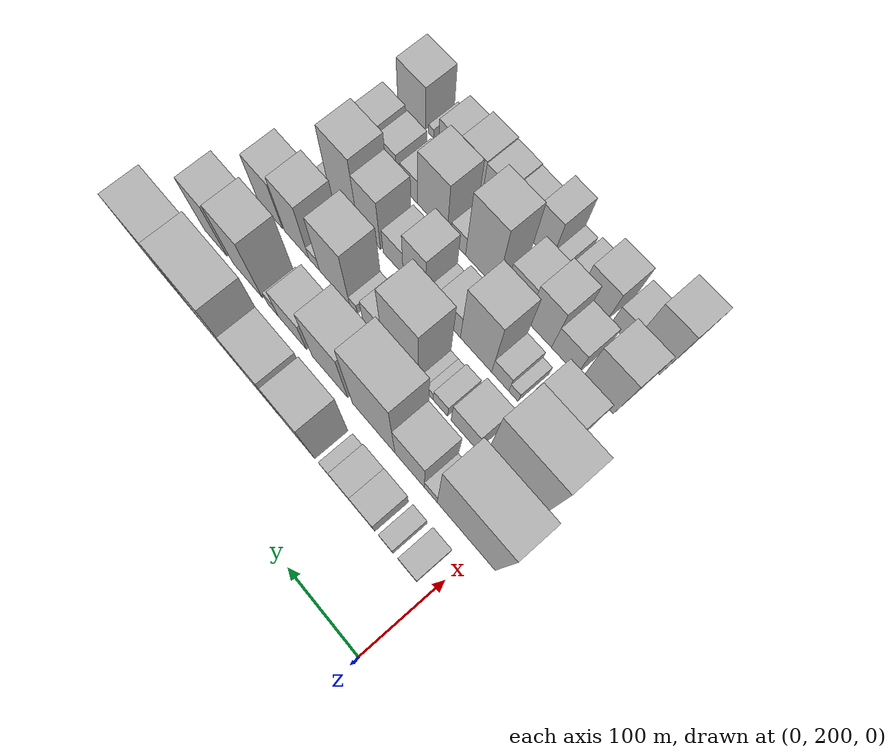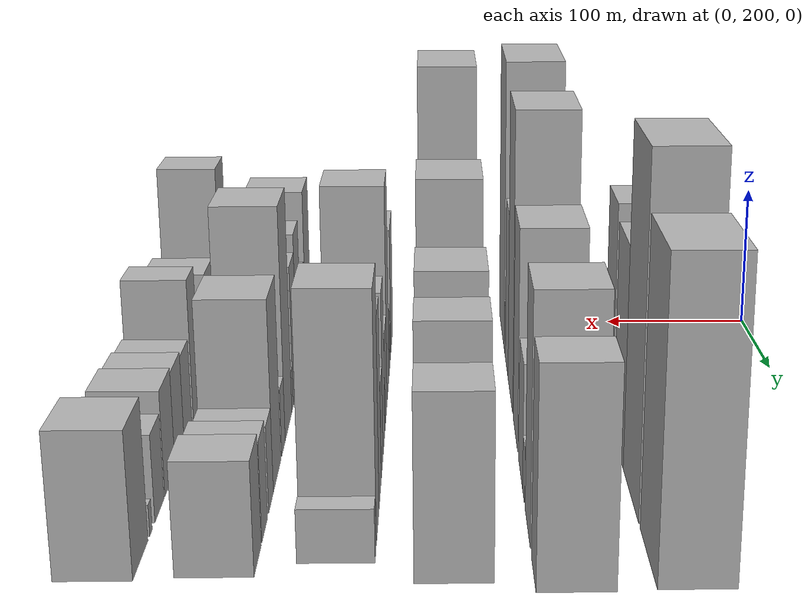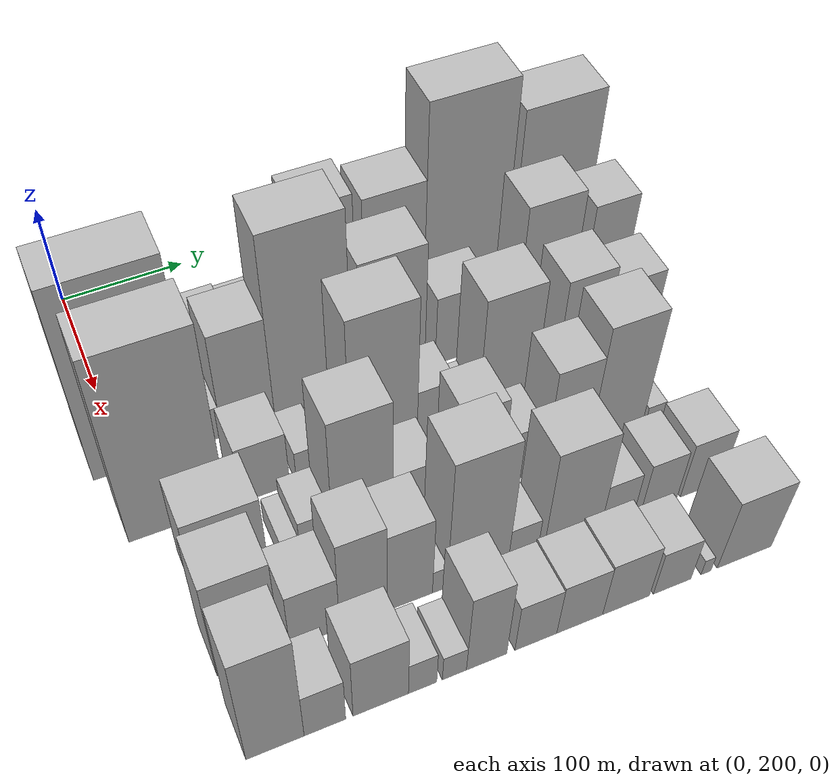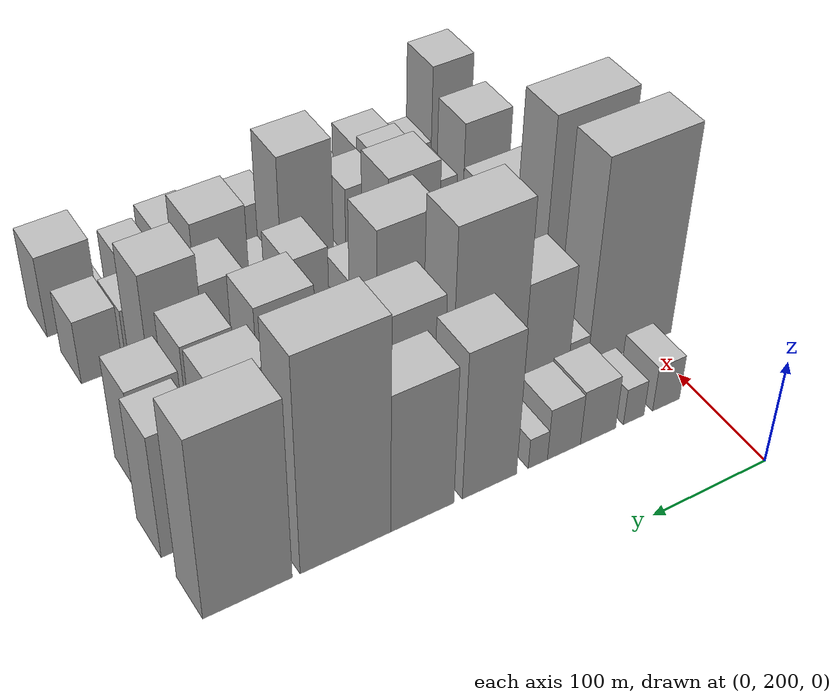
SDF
<sdf version="1.6">
 <world name="default">
  <model name="building_33">
   <static>1</static>
   <pose>100.0000 227.7720 0 0.000000 0.000000 0.000000</pose>
   <link name="link">
    <pose>0 0 22.50 0 0 0</pose>
    <collision name="collision"><geometry><box><size>40.0000 24.8781 45.0000</size></box></geometry></collision>
    <visual name="visual">
     <cast_shadows>0</cast_shadows>
     <geometry><box><size>40.0000 24.8781 45.0000</size></box></geometry>
     <material>
      <script>
       <uri>model://HANNAS_wall/materials/scripts</uri>
       <uri>model://HANNAS_wall/materials/textures</uri>
       <name>vrc/HANNAS_wall</name>
      </script>
     </material>
    </visual>
   </link>
  </model>
  <model name="building_34">
   <static>1</static>
   <pose>100.0000 257.5604 0 0.000000 0.000000 0.000000</pose>
   <link name="link">
    <pose>0 0 18.00 0 0 0</pose>
    <collision name="collision"><geometry><box><size>40.0000 18.6988 36.0000</size></box></geometry></collision>
    <visual name="visual">
     <cast_shadows>0</cast_shadows>
     <geometry><box><size>40.0000 18.6988 36.0000</size></box></geometry>
     <material>
      <script>
       <uri>model://HANNAS_wall/materials/scripts</uri>
       <uri>model://HANNAS_wall/materials/textures</uri>
       <name>vrc/HANNAS_wall</name>
      </script>
     </material>
    </visual>
   </link>
  </model>
  <model name="building_35">
   <static>1</static>
   <pose>100.0000 289.7004 0 0.000000 0.000000 0.000000</pose>
   <link name="link">
    <pose>0 0 27.00 0 0 0</pose>
    <collision name="collision"><geometry><box><size>40.0000 31.5812 54.0000</size></box></geometry></collision>
    <visual name="visual">
     <cast_shadows>0</cast_shadows>
     <geometry><box><size>40.0000 31.5812 54.0000</size></box></geometry>
     <material>
      <script>
       <uri>model://HANNAS_wall/materials/scripts</uri>
       <uri>model://HANNAS_wall/materials/textures</uri>
       <name>vrc/HANNAS_wall</name>
      </script>
     </material>
    </visual>
   </link>
  </model>
  <model name="building_36">
   <static>1</static>
   <pose>100.0000 319.9541 0 0.000000 0.000000 0.000000</pose>
   <link name="link">
    <pose>0 0 25.50 0 0 0</pose>
    <collision name="collision"><geometry><box><size>40.0000 28.9261 51.0000</size></box></geometry></collision>
    <visual name="visual">
     <cast_shadows>0</cast_shadows>
     <geometry><box><size>40.0000 28.9261 51.0000</size></box></geometry>
     <material>
      <script>
       <uri>model://HANNAS_wall/materials/scripts</uri>
       <uri>model://HANNAS_wall/materials/textures</uri>
       <name>vrc/HANNAS_wall</name>
      </script>
     </material>
    </visual>
   </link>
  </model>
  <model name="building_37">
   <static>1</static>
   <pose>100.0000 342.7423 0 0.000000 0.000000 0.000000</pose>
   <link name="link">
    <pose>0 0 15.00 0 0 0</pose>
    <collision name="collision"><geometry><box><size>40.0000 16.6505 30.0000</size></box></geometry></collision>
    <visual name="visual">
     <cast_shadows>0</cast_shadows>
     <geometry><box><size>40.0000 16.6505 30.0000</size></box></geometry>
     <material>
      <script>
       <uri>model://HANNAS_wall/materials/scripts</uri>
       <uri>model://HANNAS_wall/materials/textures</uri>
       <name>vrc/HANNAS_wall</name>
      </script>
     </material>
    </visual>
   </link>
  </model>
  <model name="building_38">
   <static>1</static>
   <pose>100.0000 383.9623 0 0.000000 0.000000 0.000000</pose>
   <link name="link">
    <pose>0 0 72.00 0 0 0</pose>
    <collision name="collision"><geometry><box><size>40.0000 45.7894 144.0000</size></box></geometry></collision>
    <visual name="visual">
     <cast_shadows>0</cast_shadows>
     <geometry><box><size>40.0000 45.7894 144.0000</size></box></geometry>
     <material>
      <script>
       <uri>model://HANNAS_wall/materials/scripts</uri>
       <uri>model://HANNAS_wall/materials/textures</uri>
       <name>vrc/HANNAS_wall</name>
      </script>
     </material>
    </visual>
   </link>
  </model>
  <model name="building_39">
   <static>1</static>
   <pose>100.0000 439.6447 0 0.000000 0.000000 0.000000</pose>
   <link name="link">
    <pose>0 0 67.50 0 0 0</pose>
    <collision name="collision"><geometry><box><size>40.0000 51.5755 135.0000</size></box></geometry></collision>
    <visual name="visual">
     <cast_shadows>0</cast_shadows>
     <geometry><box><size>40.0000 51.5755 135.0000</size></box></geometry>
     <material>
      <script>
       <uri>model://HANNAS_wall/materials/scripts</uri>
       <uri>model://HANNAS_wall/materials/textures</uri>
       <name>vrc/HANNAS_wall</name>
      </script>
     </material>
    </visual>
   </link>
  </model>
  <model name="building_40">
   <static>1</static>
   <pose>100.0000 500.8716 0 0.000000 0.000000 0.000000</pose>
   <link name="link">
    <pose>0 0 103.50 0 0 0</pose>
    <collision name="collision"><geometry><box><size>40.0000 70.8783 207.0000</size></box></geometry></collision>
    <visual name="visual">
     <cast_shadows>0</cast_shadows>
     <geometry><box><size>40.0000 70.8783 207.0000</size></box></geometry>
     <material>
      <script>
       <uri>model://HANNAS_wall/materials/scripts</uri>
       <uri>model://HANNAS_wall/materials/textures</uri>
       <name>vrc/HANNAS_wall</name>
      </script>
     </material>
    </visual>
   </link>
  </model>
  <model name="building_41">
   <static>1</static>
   <pose>100.0000 575.7816 0 0.000000 0.000000 0.000000</pose>
   <link name="link">
    <pose>0 0 87.00 0 0 0</pose>
    <collision name="collision"><geometry><box><size>40.0000 66.9415 174.0000</size></box></geometry></collision>
    <visual name="visual">
     <cast_shadows>0</cast_shadows>
     <geometry><box><size>40.0000 66.9415 174.0000</size></box></geometry>
     <material>
      <script>
       <uri>model://HANNAS_wall/materials/scripts</uri>
       <uri>model://HANNAS_wall/materials/textures</uri>
       <name>vrc/HANNAS_wall</name>
      </script>
     </material>
    </visual>
   </link>
  </model>
  <model name="building_84">
   <static>1</static>
   <pose>160.0000 216.8789 0 0.000000 0.000000 0.000000</pose>
   <link name="link">
    <pose>0 0 102.00 0 0 0</pose>
    <collision name="collision"><geometry><box><size>40.0000 79.7106 204.0000</size></box></geometry></collision>
    <visual name="visual">
     <cast_shadows>0</cast_shadows>
     <geometry><box><size>40.0000 79.7106 204.0000</size></box></geometry>
     <material>
      <script>
       <uri>model://HANNAS_wall/materials/scripts</uri>
       <uri>model://HANNAS_wall/materials/textures</uri>
       <name>vrc/HANNAS_wall</name>
      </script>
     </material>
    </visual>
   </link>
  </model>
  <model name="building_85">
   <static>1</static>
   <pose>160.0000 265.7608 0 0.000000 0.000000 0.000000</pose>
   <link name="link">
    <pose>0 0 18.00 0 0 0</pose>
    <collision name="collision"><geometry><box><size>40.0000 18.0533 36.0000</size></box></geometry></collision>
    <visual name="visual">
     <cast_shadows>0</cast_shadows>
     <geometry><box><size>40.0000 18.0533 36.0000</size></box></geometry>
     <material>
      <script>
       <uri>model://HANNAS_wall/materials/scripts</uri>
       <uri>model://HANNAS_wall/materials/textures</uri>
       <name>vrc/HANNAS_wall</name>
      </script>
     </material>
    </visual>
   </link>
  </model>
  <model name="building_86">
   <static>1</static>
   <pose>160.0000 295.6009 0 0.000000 0.000000 0.000000</pose>
   <link name="link">
    <pose>0 0 57.00 0 0 0</pose>
    <collision name="collision"><geometry><box><size>40.0000 41.6268 114.0000</size></box></geometry></collision>
    <visual name="visual">
     <cast_shadows>0</cast_shadows>
     <geometry><box><size>40.0000 41.6268 114.0000</size></box></geometry>
     <material>
      <script>
       <uri>model://HANNAS_wall/materials/scripts</uri>
       <uri>model://HANNAS_wall/materials/textures</uri>
       <name>vrc/HANNAS_wall</name>
      </script>
     </material>
    </visual>
   </link>
  </model>
  <model name="building_87">
   <static>1</static>
   <pose>160.0000 347.6384 0 0.000000 0.000000 0.000000</pose>
   <link name="link">
    <pose>0 0 97.50 0 0 0</pose>
    <collision name="collision"><geometry><box><size>40.0000 62.4483 195.0000</size></box></geometry></collision>
    <visual name="visual">
     <cast_shadows>0</cast_shadows>
     <geometry><box><size>40.0000 62.4483 195.0000</size></box></geometry>
     <material>
      <script>
       <uri>model://HANNAS_wall/materials/scripts</uri>
       <uri>model://HANNAS_wall/materials/textures</uri>
       <name>vrc/HANNAS_wall</name>
      </script>
     </material>
    </visual>
   </link>
  </model>
  <model name="building_88">
   <static>1</static>
   <pose>160.0000 412.5115 0 0.000000 0.000000 0.000000</pose>
   <link name="link">
    <pose>0 0 69.00 0 0 0</pose>
    <collision name="collision"><geometry><box><size>40.0000 53.2978 138.0000</size></box></geometry></collision>
    <visual name="visual">
     <cast_shadows>0</cast_shadows>
     <geometry><box><size>40.0000 53.2978 138.0000</size></box></geometry>
     <material>
      <script>
       <uri>model://HANNAS_wall/materials/scripts</uri>
       <uri>model://HANNAS_wall/materials/textures</uri>
       <name>vrc/HANNAS_wall</name>
      </script>
     </material>
    </visual>
   </link>
  </model>
  <model name="building_89">
   <static>1</static>
   <pose>160.0000 470.1729 0 0.000000 0.000000 0.000000</pose>
   <link name="link">
    <pose>0 0 37.50 0 0 0</pose>
    <collision name="collision"><geometry><box><size>40.0000 44.0251 75.0000</size></box></geometry></collision>
    <visual name="visual">
     <cast_shadows>0</cast_shadows>
     <geometry><box><size>40.0000 44.0251 75.0000</size></box></geometry>
     <material>
      <script>
       <uri>model://HANNAS_wall/materials/scripts</uri>
       <uri>model://HANNAS_wall/materials/textures</uri>
       <name>vrc/HANNAS_wall</name>
      </script>
     </material>
    </visual>
   </link>
  </model>
  <model name="building_90">
   <static>1</static>
   <pose>160.0000 500.7230 0 0.000000 0.000000 0.000000</pose>
   <link name="link">
    <pose>0 0 16.50 0 0 0</pose>
    <collision name="collision"><geometry><box><size>40.0000 17.0752 33.0000</size></box></geometry></collision>
    <visual name="visual">
     <cast_shadows>0</cast_shadows>
     <geometry><box><size>40.0000 17.0752 33.0000</size></box></geometry>
     <material>
      <script>
       <uri>model://HANNAS_wall/materials/scripts</uri>
       <uri>model://HANNAS_wall/materials/textures</uri>
       <name>vrc/HANNAS_wall</name>
      </script>
     </material>
    </visual>
   </link>
  </model>
  <model name="building_91">
   <static>1</static>
   <pose>160.0000 540.6095 0 0.000000 0.000000 0.000000</pose>
   <link name="link">
    <pose>0 0 70.50 0 0 0</pose>
    <collision name="collision"><geometry><box><size>40.0000 46.6977 141.0000</size></box></geometry></collision>
    <visual name="visual">
     <cast_shadows>0</cast_shadows>
     <geometry><box><size>40.0000 46.6977 141.0000</size></box></geometry>
     <material>
      <script>
       <uri>model://HANNAS_wall/materials/scripts</uri>
       <uri>model://HANNAS_wall/materials/textures</uri>
       <name>vrc/HANNAS_wall</name>
      </script>
     </material>
    </visual>
   </link>
  </model>
  <model name="building_92">
   <static>1</static>
   <pose>160.0000 592.5460 0 0.000000 0.000000 0.000000</pose>
   <link name="link">
    <pose>0 0 60.00 0 0 0</pose>
    <collision name="collision"><geometry><box><size>40.0000 37.1753 120.0000</size></box></geometry></collision>
    <visual name="visual">
     <cast_shadows>0</cast_shadows>
     <geometry><box><size>40.0000 37.1753 120.0000</size></box></geometry>
     <material>
      <script>
       <uri>model://HANNAS_wall/materials/scripts</uri>
       <uri>model://HANNAS_wall/materials/textures</uri>
       <name>vrc/HANNAS_wall</name>
      </script>
     </material>
    </visual>
   </link>
  </model>
  <model name="building_133">
   <static>1</static>
   <pose>220.0000 222.3057 0 0.000000 0.000000 0.000000</pose>
   <link name="link">
    <pose>0 0 100.50 0 0 0</pose>
    <collision name="collision"><geometry><box><size>40.0000 72.5046 201.0000</size></box></geometry></collision>
    <visual name="visual">
     <cast_shadows>0</cast_shadows>
     <geometry><box><size>40.0000 72.5046 201.0000</size></box></geometry>
     <material>
      <script>
       <uri>model://HANNAS_wall/materials/scripts</uri>
       <uri>model://HANNAS_wall/materials/textures</uri>
       <name>vrc/HANNAS_wall</name>
      </script>
     </material>
    </visual>
   </link>
  </model>
  <model name="building_134">
   <static>1</static>
   <pose>220.0000 287.2563 0 0.000000 0.000000 0.000000</pose>
   <link name="link">
    <pose>0 0 31.50 0 0 0</pose>
    <collision name="collision"><geometry><box><size>40.0000 37.3966 63.0000</size></box></geometry></collision>
    <visual name="visual">
     <cast_shadows>0</cast_shadows>
     <geometry><box><size>40.0000 37.3966 63.0000</size></box></geometry>
     <material>
      <script>
       <uri>model://HANNAS_wall/materials/scripts</uri>
       <uri>model://HANNAS_wall/materials/textures</uri>
       <name>vrc/HANNAS_wall</name>
      </script>
     </material>
    </visual>
   </link>
  </model>
  <model name="building_135">
   <static>1</static>
   <pose>220.0000 321.2504 0 0.000000 0.000000 0.000000</pose>
   <link name="link">
    <pose>0 0 18.00 0 0 0</pose>
    <collision name="collision"><geometry><box><size>40.0000 20.5917 36.0000</size></box></geometry></collision>
    <visual name="visual">
     <cast_shadows>0</cast_shadows>
     <geometry><box><size>40.0000 20.5917 36.0000</size></box></geometry>
     <material>
      <script>
       <uri>model://HANNAS_wall/materials/scripts</uri>
       <uri>model://HANNAS_wall/materials/textures</uri>
       <name>vrc/HANNAS_wall</name>
      </script>
     </material>
    </visual>
   </link>
  </model>
  <model name="building_136">
   <static>1</static>
   <pose>220.0000 336.8539 0 0.000000 0.000000 0.000000</pose>
   <link name="link">
    <pose>0 0 12.00 0 0 0</pose>
    <collision name="collision"><geometry><box><size>40.0000 10.6153 24.0000</size></box></geometry></collision>
    <visual name="visual">
     <cast_shadows>0</cast_shadows>
     <geometry><box><size>40.0000 10.6153 24.0000</size></box></geometry>
     <material>
      <script>
       <uri>model://HANNAS_wall/materials/scripts</uri>
       <uri>model://HANNAS_wall/materials/textures</uri>
       <name>vrc/HANNAS_wall</name>
      </script>
     </material>
    </visual>
   </link>
  </model>
  <model name="building_137">
   <static>1</static>
   <pose>220.0000 347.4968 0 0.000000 0.000000 0.000000</pose>
   <link name="link">
    <pose>0 0 12.00 0 0 0</pose>
    <collision name="collision"><geometry><box><size>40.0000 10.6705 24.0000</size></box></geometry></collision>
    <visual name="visual">
     <cast_shadows>0</cast_shadows>
     <geometry><box><size>40.0000 10.6705 24.0000</size></box></geometry>
     <material>
      <script>
       <uri>model://HANNAS_wall/materials/scripts</uri>
       <uri>model://HANNAS_wall/materials/textures</uri>
       <name>vrc/HANNAS_wall</name>
      </script>
     </material>
    </visual>
   </link>
  </model>
  <model name="building_138">
   <static>1</static>
   <pose>220.0000 379.4700 0 0.000000 0.000000 0.000000</pose>
   <link name="link">
    <pose>0 0 79.50 0 0 0</pose>
    <collision name="collision"><geometry><box><size>40.0000 53.2759 159.0000</size></box></geometry></collision>
    <visual name="visual">
     <cast_shadows>0</cast_shadows>
     <geometry><box><size>40.0000 53.2759 159.0000</size></box></geometry>
     <material>
      <script>
       <uri>model://HANNAS_wall/materials/scripts</uri>
       <uri>model://HANNAS_wall/materials/textures</uri>
       <name>vrc/HANNAS_wall</name>
      </script>
     </material>
    </visual>
   </link>
  </model>
  <model name="building_139">
   <static>1</static>
   <pose>220.0000 421.1445 0 0.000000 0.000000 0.000000</pose>
   <link name="link">
    <pose>0 0 28.50 0 0 0</pose>
    <collision name="collision"><geometry><box><size>40.0000 30.0731 57.0000</size></box></geometry></collision>
    <visual name="visual">
     <cast_shadows>0</cast_shadows>
     <geometry><box><size>40.0000 30.0731 57.0000</size></box></geometry>
     <material>
      <script>
       <uri>model://HANNAS_wall/materials/scripts</uri>
       <uri>model://HANNAS_wall/materials/textures</uri>
       <name>vrc/HANNAS_wall</name>
      </script>
     </material>
    </visual>
   </link>
  </model>
  <model name="building_140">
   <static>1</static>
   <pose>220.0000 450.0571 0 0.000000 0.000000 0.000000</pose>
   <link name="link">
    <pose>0 0 12.00 0 0 0</pose>
    <collision name="collision"><geometry><box><size>40.0000 11.7522 24.0000</size></box></geometry></collision>
    <visual name="visual">
     <cast_shadows>0</cast_shadows>
     <geometry><box><size>40.0000 11.7522 24.0000</size></box></geometry>
     <material>
      <script>
       <uri>model://HANNAS_wall/materials/scripts</uri>
       <uri>model://HANNAS_wall/materials/textures</uri>
       <name>vrc/HANNAS_wall</name>
      </script>
     </material>
    </visual>
   </link>
  </model>
  <model name="building_141">
   <static>1</static>
   <pose>220.0000 479.3016 0 0.000000 0.000000 0.000000</pose>
   <link name="link">
    <pose>0 0 66.00 0 0 0</pose>
    <collision name="collision"><geometry><box><size>40.0000 46.7369 132.0000</size></box></geometry></collision>
    <visual name="visual">
     <cast_shadows>0</cast_shadows>
     <geometry><box><size>40.0000 46.7369 132.0000</size></box></geometry>
     <material>
      <script>
       <uri>model://HANNAS_wall/materials/scripts</uri>
       <uri>model://HANNAS_wall/materials/textures</uri>
       <name>vrc/HANNAS_wall</name>
      </script>
     </material>
    </visual>
   </link>
  </model>
  <model name="building_142">
   <static>1</static>
   <pose>220.0000 511.0137 0 0.000000 0.000000 0.000000</pose>
   <link name="link">
    <pose>0 0 15.00 0 0 0</pose>
    <collision name="collision"><geometry><box><size>40.0000 16.6872 30.0000</size></box></geometry></collision>
    <visual name="visual">
     <cast_shadows>0</cast_shadows>
     <geometry><box><size>40.0000 16.6872 30.0000</size></box></geometry>
     <material>
      <script>
       <uri>model://HANNAS_wall/materials/scripts</uri>
       <uri>model://HANNAS_wall/materials/textures</uri>
       <name>vrc/HANNAS_wall</name>
      </script>
     </material>
    </visual>
   </link>
  </model>
  <model name="building_143">
   <static>1</static>
   <pose>220.0000 538.8354 0 0.000000 0.000000 0.000000</pose>
   <link name="link">
    <pose>0 0 61.50 0 0 0</pose>
    <collision name="collision"><geometry><box><size>40.0000 38.9561 123.0000</size></box></geometry></collision>
    <visual name="visual">
     <cast_shadows>0</cast_shadows>
     <geometry><box><size>40.0000 38.9561 123.0000</size></box></geometry>
     <material>
      <script>
       <uri>model://HANNAS_wall/materials/scripts</uri>
       <uri>model://HANNAS_wall/materials/textures</uri>
       <name>vrc/HANNAS_wall</name>
      </script>
     </material>
    </visual>
   </link>
  </model>
  <model name="building_144">
   <static>1</static>
   <pose>220.0000 581.1800 0 0.000000 0.000000 0.000000</pose>
   <link name="link">
    <pose>0 0 51.00 0 0 0</pose>
    <collision name="collision"><geometry><box><size>40.0000 39.7331 102.0000</size></box></geometry></collision>
    <visual name="visual">
     <cast_shadows>0</cast_shadows>
     <geometry><box><size>40.0000 39.7331 102.0000</size></box></geometry>
     <material>
      <script>
       <uri>model://HANNAS_wall/materials/scripts</uri>
       <uri>model://HANNAS_wall/materials/textures</uri>
       <name>vrc/HANNAS_wall</name>
      </script>
     </material>
    </visual>
   </link>
  </model>
  <model name="building_187">
   <static>1</static>
   <pose>280.0000 241.6313 0 0.000000 0.000000 0.000000</pose>
   <link name="link">
    <pose>0 0 45.00 0 0 0</pose>
    <collision name="collision"><geometry><box><size>40.0000 53.3908 90.0000</size></box></geometry></collision>
    <visual name="visual">
     <cast_shadows>0</cast_shadows>
     <geometry><box><size>40.0000 53.3908 90.0000</size></box></geometry>
     <material>
      <script>
       <uri>model://HANNAS_wall/materials/scripts</uri>
       <uri>model://HANNAS_wall/materials/textures</uri>
       <name>vrc/HANNAS_wall</name>
      </script>
     </material>
    </visual>
   </link>
  </model>
  <model name="building_188">
   <static>1</static>
   <pose>280.0000 284.8291 0 0.000000 0.000000 0.000000</pose>
   <link name="link">
    <pose>0 0 13.50 0 0 0</pose>
    <collision name="collision"><geometry><box><size>40.0000 13.0049 27.0000</size></box></geometry></collision>
    <visual name="visual">
     <cast_shadows>0</cast_shadows>
     <geometry><box><size>40.0000 13.0049 27.0000</size></box></geometry>
     <material>
      <script>
       <uri>model://HANNAS_wall/materials/scripts</uri>
       <uri>model://HANNAS_wall/materials/textures</uri>
       <name>vrc/HANNAS_wall</name>
      </script>
     </material>
    </visual>
   </link>
  </model>
  <model name="building_189">
   <static>1</static>
   <pose>280.0000 303.5102 0 0.000000 0.000000 0.000000</pose>
   <link name="link">
    <pose>0 0 22.50 0 0 0</pose>
    <collision name="collision"><geometry><box><size>40.0000 24.3573 45.0000</size></box></geometry></collision>
    <visual name="visual">
     <cast_shadows>0</cast_shadows>
     <geometry><box><size>40.0000 24.3573 45.0000</size></box></geometry>
     <material>
      <script>
       <uri>model://HANNAS_wall/materials/scripts</uri>
       <uri>model://HANNAS_wall/materials/textures</uri>
       <name>vrc/HANNAS_wall</name>
      </script>
     </material>
    </visual>
   </link>
  </model>
  <model name="building_190">
   <static>1</static>
   <pose>280.0000 338.2527 0 0.000000 0.000000 0.000000</pose>
   <link name="link">
    <pose>0 0 72.00 0 0 0</pose>
    <collision name="collision"><geometry><box><size>40.0000 45.1277 144.0000</size></box></geometry></collision>
    <visual name="visual">
     <cast_shadows>0</cast_shadows>
     <geometry><box><size>40.0000 45.1277 144.0000</size></box></geometry>
     <material>
      <script>
       <uri>model://HANNAS_wall/materials/scripts</uri>
       <uri>model://HANNAS_wall/materials/textures</uri>
       <name>vrc/HANNAS_wall</name>
      </script>
     </material>
    </visual>
   </link>
  </model>
  <model name="building_191">
   <static>1</static>
   <pose>280.0000 377.9927 0 0.000000 0.000000 0.000000</pose>
   <link name="link">
    <pose>0 0 30.00 0 0 0</pose>
    <collision name="collision"><geometry><box><size>40.0000 34.3522 60.0000</size></box></geometry></collision>
    <visual name="visual">
     <cast_shadows>0</cast_shadows>
     <geometry><box><size>40.0000 34.3522 60.0000</size></box></geometry>
     <material>
      <script>
       <uri>model://HANNAS_wall/materials/scripts</uri>
       <uri>model://HANNAS_wall/materials/textures</uri>
       <name>vrc/HANNAS_wall</name>
      </script>
     </material>
    </visual>
   </link>
  </model>
  <model name="building_192">
   <static>1</static>
   <pose>280.0000 403.7752 0 0.000000 0.000000 0.000000</pose>
   <link name="link">
    <pose>0 0 15.00 0 0 0</pose>
    <collision name="collision"><geometry><box><size>40.0000 17.2130 30.0000</size></box></geometry></collision>
    <visual name="visual">
     <cast_shadows>0</cast_shadows>
     <geometry><box><size>40.0000 17.2130 30.0000</size></box></geometry>
     <material>
      <script>
       <uri>model://HANNAS_wall/materials/scripts</uri>
       <uri>model://HANNAS_wall/materials/textures</uri>
       <name>vrc/HANNAS_wall</name>
      </script>
     </material>
    </visual>
   </link>
  </model>
  <model name="building_193">
   <static>1</static>
   <pose>280.0000 429.1545 0 0.000000 0.000000 0.000000</pose>
   <link name="link">
    <pose>0 0 51.00 0 0 0</pose>
    <collision name="collision"><geometry><box><size>40.0000 33.5456 102.0000</size></box></geometry></collision>
    <visual name="visual">
     <cast_shadows>0</cast_shadows>
     <geometry><box><size>40.0000 33.5456 102.0000</size></box></geometry>
     <material>
      <script>
       <uri>model://HANNAS_wall/materials/scripts</uri>
       <uri>model://HANNAS_wall/materials/textures</uri>
       <name>vrc/HANNAS_wall</name>
      </script>
     </material>
    </visual>
   </link>
  </model>
  <model name="building_194">
   <static>1</static>
   <pose>280.0000 461.2775 0 0.000000 0.000000 0.000000</pose>
   <link name="link">
    <pose>0 0 28.50 0 0 0</pose>
    <collision name="collision"><geometry><box><size>40.0000 30.7005 57.0000</size></box></geometry></collision>
    <visual name="visual">
     <cast_shadows>0</cast_shadows>
     <geometry><box><size>40.0000 30.7005 57.0000</size></box></geometry>
     <material>
      <script>
       <uri>model://HANNAS_wall/materials/scripts</uri>
       <uri>model://HANNAS_wall/materials/textures</uri>
       <name>vrc/HANNAS_wall</name>
      </script>
     </material>
    </visual>
   </link>
  </model>
  <model name="building_195">
   <static>1</static>
   <pose>280.0000 498.4155 0 0.000000 0.000000 0.000000</pose>
   <link name="link">
    <pose>0 0 55.50 0 0 0</pose>
    <collision name="collision"><geometry><box><size>40.0000 35.5756 111.0000</size></box></geometry></collision>
    <visual name="visual">
     <cast_shadows>0</cast_shadows>
     <geometry><box><size>40.0000 35.5756 111.0000</size></box></geometry>
     <material>
      <script>
       <uri>model://HANNAS_wall/materials/scripts</uri>
       <uri>model://HANNAS_wall/materials/textures</uri>
       <name>vrc/HANNAS_wall</name>
      </script>
     </material>
    </visual>
   </link>
  </model>
  <model name="building_196">
   <static>1</static>
   <pose>280.0000 538.2367 0 0.000000 0.000000 0.000000</pose>
   <link name="link">
    <pose>0 0 70.50 0 0 0</pose>
    <collision name="collision"><geometry><box><size>40.0000 44.0669 141.0000</size></box></geometry></collision>
    <visual name="visual">
     <cast_shadows>0</cast_shadows>
     <geometry><box><size>40.0000 44.0669 141.0000</size></box></geometry>
     <material>
      <script>
       <uri>model://HANNAS_wall/materials/scripts</uri>
       <uri>model://HANNAS_wall/materials/textures</uri>
       <name>vrc/HANNAS_wall</name>
      </script>
     </material>
    </visual>
   </link>
  </model>
  <model name="building_197">
   <static>1</static>
   <pose>280.0000 570.9662 0 0.000000 0.000000 0.000000</pose>
   <link name="link">
    <pose>0 0 15.00 0 0 0</pose>
    <collision name="collision"><geometry><box><size>40.0000 15.3921 30.0000</size></box></geometry></collision>
    <visual name="visual">
     <cast_shadows>0</cast_shadows>
     <geometry><box><size>40.0000 15.3921 30.0000</size></box></geometry>
     <material>
      <script>
       <uri>model://HANNAS_wall/materials/scripts</uri>
       <uri>model://HANNAS_wall/materials/textures</uri>
       <name>vrc/HANNAS_wall</name>
      </script>
     </material>
    </visual>
   </link>
  </model>
  <model name="building_243">
   <static>1</static>
   <pose>340.0000 232.7843 0 0.000000 0.000000 0.000000</pose>
   <link name="link">
    <pose>0 0 57.00 0 0 0</pose>
    <collision name="collision"><geometry><box><size>40.0000 44.1592 114.0000</size></box></geometry></collision>
    <visual name="visual">
     <cast_shadows>0</cast_shadows>
     <geometry><box><size>40.0000 44.1592 114.0000</size></box></geometry>
     <material>
      <script>
       <uri>model://HANNAS_wall/materials/scripts</uri>
       <uri>model://HANNAS_wall/materials/textures</uri>
       <name>vrc/HANNAS_wall</name>
      </script>
     </material>
    </visual>
   </link>
  </model>
  <model name="building_244">
   <static>1</static>
   <pose>340.0000 278.5939 0 0.000000 0.000000 0.000000</pose>
   <link name="link">
    <pose>0 0 33.00 0 0 0</pose>
    <collision name="collision"><geometry><box><size>40.0000 35.4601 66.0000</size></box></geometry></collision>
    <visual name="visual">
     <cast_shadows>0</cast_shadows>
     <geometry><box><size>40.0000 35.4601 66.0000</size></box></geometry>
     <material>
      <script>
       <uri>model://HANNAS_wall/materials/scripts</uri>
       <uri>model://HANNAS_wall/materials/textures</uri>
       <name>vrc/HANNAS_wall</name>
      </script>
     </material>
    </visual>
   </link>
  </model>
  <model name="building_245">
   <static>1</static>
   <pose>340.0000 313.5921 0 0.000000 0.000000 0.000000</pose>
   <link name="link">
    <pose>0 0 52.50 0 0 0</pose>
    <collision name="collision"><geometry><box><size>40.0000 34.5362 105.0000</size></box></geometry></collision>
    <visual name="visual">
     <cast_shadows>0</cast_shadows>
     <geometry><box><size>40.0000 34.5362 105.0000</size></box></geometry>
     <material>
      <script>
       <uri>model://HANNAS_wall/materials/scripts</uri>
       <uri>model://HANNAS_wall/materials/textures</uri>
       <name>vrc/HANNAS_wall</name>
      </script>
     </material>
    </visual>
   </link>
  </model>
  <model name="building_246">
   <static>1</static>
   <pose>340.0000 347.4494 0 0.000000 0.000000 0.000000</pose>
   <link name="link">
    <pose>0 0 46.50 0 0 0</pose>
    <collision name="collision"><geometry><box><size>40.0000 33.1783 93.0000</size></box></geometry></collision>
    <visual name="visual">
     <cast_shadows>0</cast_shadows>
     <geometry><box><size>40.0000 33.1783 93.0000</size></box></geometry>
     <material>
      <script>
       <uri>model://HANNAS_wall/materials/scripts</uri>
       <uri>model://HANNAS_wall/materials/textures</uri>
       <name>vrc/HANNAS_wall</name>
      </script>
     </material>
    </visual>
   </link>
  </model>
  <model name="building_247">
   <static>1</static>
   <pose>340.0000 369.5222 0 0.000000 0.000000 0.000000</pose>
   <link name="link">
    <pose>0 0 13.50 0 0 0</pose>
    <collision name="collision"><geometry><box><size>40.0000 10.9673 27.0000</size></box></geometry></collision>
    <visual name="visual">
     <cast_shadows>0</cast_shadows>
     <geometry><box><size>40.0000 10.9673 27.0000</size></box></geometry>
     <material>
      <script>
       <uri>model://HANNAS_wall/materials/scripts</uri>
       <uri>model://HANNAS_wall/materials/textures</uri>
       <name>vrc/HANNAS_wall</name>
      </script>
     </material>
    </visual>
   </link>
  </model>
  <model name="building_248">
   <static>1</static>
   <pose>340.0000 398.1174 0 0.000000 0.000000 0.000000</pose>
   <link name="link">
    <pose>0 0 73.50 0 0 0</pose>
    <collision name="collision"><geometry><box><size>40.0000 46.2232 147.0000</size></box></geometry></collision>
    <visual name="visual">
     <cast_shadows>0</cast_shadows>
     <geometry><box><size>40.0000 46.2232 147.0000</size></box></geometry>
     <material>
      <script>
       <uri>model://HANNAS_wall/materials/scripts</uri>
       <uri>model://HANNAS_wall/materials/textures</uri>
       <name>vrc/HANNAS_wall</name>
      </script>
     </material>
    </visual>
   </link>
  </model>
  <model name="building_249">
   <static>1</static>
   <pose>340.0000 432.6053 0 0.000000 0.000000 0.000000</pose>
   <link name="link">
    <pose>0 0 21.00 0 0 0</pose>
    <collision name="collision"><geometry><box><size>40.0000 22.7524 42.0000</size></box></geometry></collision>
    <visual name="visual">
     <cast_shadows>0</cast_shadows>
     <geometry><box><size>40.0000 22.7524 42.0000</size></box></geometry>
     <material>
      <script>
       <uri>model://HANNAS_wall/materials/scripts</uri>
       <uri>model://HANNAS_wall/materials/textures</uri>
       <name>vrc/HANNAS_wall</name>
      </script>
     </material>
    </visual>
   </link>
  </model>
  <model name="building_250">
   <static>1</static>
   <pose>340.0000 471.5284 0 0.000000 0.000000 0.000000</pose>
   <link name="link">
    <pose>0 0 57.00 0 0 0</pose>
    <collision name="collision"><geometry><box><size>40.0000 45.0938 114.0000</size></box></geometry></collision>
    <visual name="visual">
     <cast_shadows>0</cast_shadows>
     <geometry><box><size>40.0000 45.0938 114.0000</size></box></geometry>
     <material>
      <script>
       <uri>model://HANNAS_wall/materials/scripts</uri>
       <uri>model://HANNAS_wall/materials/textures</uri>
       <name>vrc/HANNAS_wall</name>
      </script>
     </material>
    </visual>
   </link>
  </model>
  <model name="building_251">
   <static>1</static>
   <pose>340.0000 507.2998 0 0.000000 0.000000 0.000000</pose>
   <link name="link">
    <pose>0 0 25.50 0 0 0</pose>
    <collision name="collision"><geometry><box><size>40.0000 26.4490 51.0000</size></box></geometry></collision>
    <visual name="visual">
     <cast_shadows>0</cast_shadows>
     <geometry><box><size>40.0000 26.4490 51.0000</size></box></geometry>
     <material>
      <script>
       <uri>model://HANNAS_wall/materials/scripts</uri>
       <uri>model://HANNAS_wall/materials/textures</uri>
       <name>vrc/HANNAS_wall</name>
      </script>
     </material>
    </visual>
   </link>
  </model>
  <model name="building_252">
   <static>1</static>
   <pose>340.0000 541.2107 0 0.000000 0.000000 0.000000</pose>
   <link name="link">
    <pose>0 0 28.50 0 0 0</pose>
    <collision name="collision"><geometry><box><size>40.0000 29.3726 57.0000</size></box></geometry></collision>
    <visual name="visual">
     <cast_shadows>0</cast_shadows>
     <geometry><box><size>40.0000 29.3726 57.0000</size></box></geometry>
     <material>
      <script>
       <uri>model://HANNAS_wall/materials/scripts</uri>
       <uri>model://HANNAS_wall/materials/textures</uri>
       <name>vrc/HANNAS_wall</name>
      </script>
     </material>
    </visual>
   </link>
  </model>
  <model name="building_253">
   <static>1</static>
   <pose>340.0000 575.8999 0 0.000000 0.000000 0.000000</pose>
   <link name="link">
    <pose>0 0 31.50 0 0 0</pose>
    <collision name="collision"><geometry><box><size>40.0000 34.0059 63.0000</size></box></geometry></collision>
    <visual name="visual">
     <cast_shadows>0</cast_shadows>
     <geometry><box><size>40.0000 34.0059 63.0000</size></box></geometry>
     <material>
      <script>
       <uri>model://HANNAS_wall/materials/scripts</uri>
       <uri>model://HANNAS_wall/materials/textures</uri>
       <name>vrc/HANNAS_wall</name>
      </script>
     </material>
    </visual>
   </link>
  </model>
  <model name="building_295">
   <static>1</static>
   <pose>400.0000 228.6457 0 0.000000 0.000000 0.000000</pose>
   <link name="link">
    <pose>0 0 64.50 0 0 0</pose>
    <collision name="collision"><geometry><box><size>40.0000 38.8808 129.0000</size></box></geometry></collision>
    <visual name="visual">
     <cast_shadows>0</cast_shadows>
     <geometry><box><size>40.0000 38.8808 129.0000</size></box></geometry>
     <material>
      <script>
       <uri>model://HANNAS_wall/materials/scripts</uri>
       <uri>model://HANNAS_wall/materials/textures</uri>
       <name>vrc/HANNAS_wall</name>
      </script>
     </material>
    </visual>
   </link>
  </model>
  <model name="building_296">
   <static>1</static>
   <pose>400.0000 262.1777 0 0.000000 0.000000 0.000000</pose>
   <link name="link">
    <pose>0 0 27.00 0 0 0</pose>
    <collision name="collision"><geometry><box><size>40.0000 28.1831 54.0000</size></box></geometry></collision>
    <visual name="visual">
     <cast_shadows>0</cast_shadows>
     <geometry><box><size>40.0000 28.1831 54.0000</size></box></geometry>
     <material>
      <script>
       <uri>model://HANNAS_wall/materials/scripts</uri>
       <uri>model://HANNAS_wall/materials/textures</uri>
       <name>vrc/HANNAS_wall</name>
      </script>
     </material>
    </visual>
   </link>
  </model>
  <model name="building_297">
   <static>1</static>
   <pose>400.0000 300.5374 0 0.000000 0.000000 0.000000</pose>
   <link name="link">
    <pose>0 0 37.50 0 0 0</pose>
    <collision name="collision"><geometry><box><size>40.0000 38.5364 75.0000</size></box></geometry></collision>
    <visual name="visual">
     <cast_shadows>0</cast_shadows>
     <geometry><box><size>40.0000 38.5364 75.0000</size></box></geometry>
     <material>
      <script>
       <uri>model://HANNAS_wall/materials/scripts</uri>
       <uri>model://HANNAS_wall/materials/textures</uri>
       <name>vrc/HANNAS_wall</name>
      </script>
     </material>
    </visual>
   </link>
  </model>
  <model name="building_298">
   <static>1</static>
   <pose>400.0000 329.8182 0 0.000000 0.000000 0.000000</pose>
   <link name="link">
    <pose>0 0 19.50 0 0 0</pose>
    <collision name="collision"><geometry><box><size>40.0000 20.0254 39.0000</size></box></geometry></collision>
    <visual name="visual">
     <cast_shadows>0</cast_shadows>
     <geometry><box><size>40.0000 20.0254 39.0000</size></box></geometry>
     <material>
      <script>
       <uri>model://HANNAS_wall/materials/scripts</uri>
       <uri>model://HANNAS_wall/materials/textures</uri>
       <name>vrc/HANNAS_wall</name>
      </script>
     </material>
    </visual>
   </link>
  </model>
  <model name="building_299">
   <static>1</static>
   <pose>400.0000 352.4543 0 0.000000 0.000000 0.000000</pose>
   <link name="link">
    <pose>0 0 15.00 0 0 0</pose>
    <collision name="collision"><geometry><box><size>40.0000 17.2469 30.0000</size></box></geometry></collision>
    <visual name="visual">
     <cast_shadows>0</cast_shadows>
     <geometry><box><size>40.0000 17.2469 30.0000</size></box></geometry>
     <material>
      <script>
       <uri>model://HANNAS_wall/materials/scripts</uri>
       <uri>model://HANNAS_wall/materials/textures</uri>
       <name>vrc/HANNAS_wall</name>
      </script>
     </material>
    </visual>
   </link>
  </model>
  <model name="building_300">
   <static>1</static>
   <pose>400.0000 375.7237 0 0.000000 0.000000 0.000000</pose>
   <link name="link">
    <pose>0 0 46.50 0 0 0</pose>
    <collision name="collision"><geometry><box><size>40.0000 29.2918 93.0000</size></box></geometry></collision>
    <visual name="visual">
     <cast_shadows>0</cast_shadows>
     <geometry><box><size>40.0000 29.2918 93.0000</size></box></geometry>
     <material>
      <script>
       <uri>model://HANNAS_wall/materials/scripts</uri>
       <uri>model://HANNAS_wall/materials/textures</uri>
       <name>vrc/HANNAS_wall</name>
      </script>
     </material>
    </visual>
   </link>
  </model>
  <model name="building_301">
   <static>1</static>
   <pose>400.0000 411.9142 0 0.000000 0.000000 0.000000</pose>
   <link name="link">
    <pose>0 0 28.50 0 0 0</pose>
    <collision name="collision"><geometry><box><size>40.0000 31.0892 57.0000</size></box></geometry></collision>
    <visual name="visual">
     <cast_shadows>0</cast_shadows>
     <geometry><box><size>40.0000 31.0892 57.0000</size></box></geometry>
     <material>
      <script>
       <uri>model://HANNAS_wall/materials/scripts</uri>
       <uri>model://HANNAS_wall/materials/textures</uri>
       <name>vrc/HANNAS_wall</name>
      </script>
     </material>
    </visual>
   </link>
  </model>
  <model name="building_302">
   <static>1</static>
   <pose>400.0000 444.7908 0 0.000000 0.000000 0.000000</pose>
   <link name="link">
    <pose>0 0 30.00 0 0 0</pose>
    <collision name="collision"><geometry><box><size>40.0000 34.6640 60.0000</size></box></geometry></collision>
    <visual name="visual">
     <cast_shadows>0</cast_shadows>
     <geometry><box><size>40.0000 34.6640 60.0000</size></box></geometry>
     <material>
      <script>
       <uri>model://HANNAS_wall/materials/scripts</uri>
       <uri>model://HANNAS_wall/materials/textures</uri>
       <name>vrc/HANNAS_wall</name>
      </script>
     </material>
    </visual>
   </link>
  </model>
  <model name="building_303">
   <static>1</static>
   <pose>400.0000 480.2357 0 0.000000 0.000000 0.000000</pose>
   <link name="link">
    <pose>0 0 31.50 0 0 0</pose>
    <collision name="collision"><geometry><box><size>40.0000 36.2258 63.0000</size></box></geometry></collision>
    <visual name="visual">
     <cast_shadows>0</cast_shadows>
     <geometry><box><size>40.0000 36.2258 63.0000</size></box></geometry>
     <material>
      <script>
       <uri>model://HANNAS_wall/materials/scripts</uri>
       <uri>model://HANNAS_wall/materials/textures</uri>
       <name>vrc/HANNAS_wall</name>
      </script>
     </material>
    </visual>
   </link>
  </model>
  <model name="building_304">
   <static>1</static>
   <pose>400.0000 516.1416 0 0.000000 0.000000 0.000000</pose>
   <link name="link">
    <pose>0 0 25.50 0 0 0</pose>
    <collision name="collision"><geometry><box><size>40.0000 29.5860 51.0000</size></box></geometry></collision>
    <visual name="visual">
     <cast_shadows>0</cast_shadows>
     <geometry><box><size>40.0000 29.5860 51.0000</size></box></geometry>
     <material>
      <script>
       <uri>model://HANNAS_wall/materials/scripts</uri>
       <uri>model://HANNAS_wall/materials/textures</uri>
       <name>vrc/HANNAS_wall</name>
      </script>
     </material>
    </visual>
   </link>
  </model>
  <model name="building_305">
   <static>1</static>
   <pose>400.0000 542.9280 0 0.000000 0.000000 0.000000</pose>
   <link name="link">
    <pose>0 0 9.00 0 0 0</pose>
    <collision name="collision"><geometry><box><size>40.0000 7.9867 18.0000</size></box></geometry></collision>
    <visual name="visual">
     <cast_shadows>0</cast_shadows>
     <geometry><box><size>40.0000 7.9867 18.0000</size></box></geometry>
     <material>
      <script>
       <uri>model://HANNAS_wall/materials/scripts</uri>
       <uri>model://HANNAS_wall/materials/textures</uri>
       <name>vrc/HANNAS_wall</name>
      </script>
     </material>
    </visual>
   </link>
  </model>
  <model name="building_306">
   <static>1</static>
   <pose>400.0000 573.8506 0 0.000000 0.000000 0.000000</pose>
   <link name="link">
    <pose>0 0 40.50 0 0 0</pose>
    <collision name="collision"><geometry><box><size>40.0000 43.8584 81.0000</size></box></geometry></collision>
    <visual name="visual">
     <cast_shadows>0</cast_shadows>
     <geometry><box><size>40.0000 43.8584 81.0000</size></box></geometry>
     <material>
      <script>
       <uri>model://HANNAS_wall/materials/scripts</uri>
       <uri>model://HANNAS_wall/materials/textures</uri>
       <name>vrc/HANNAS_wall</name>
      </script>
     </material>
    </visual>
   </link>
  </model>
 </world>
</sdf>
